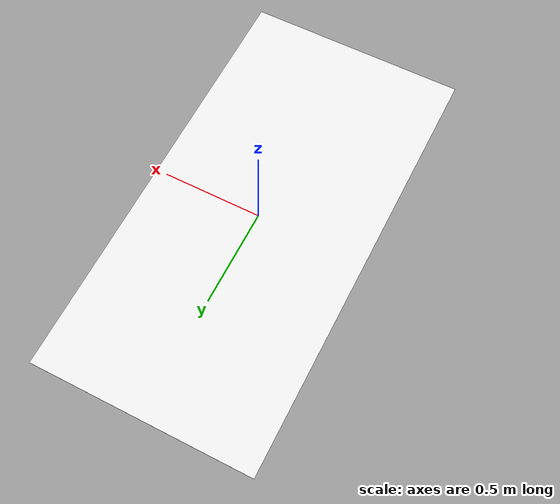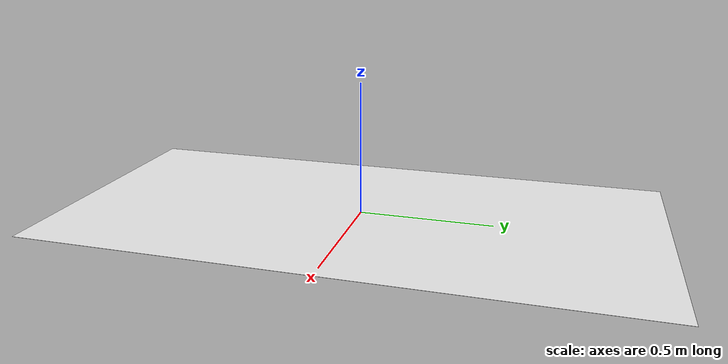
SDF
<?xml version='1.0'?>
<sdf version='1.6'>
  <model name='race_track14'>
    <static>true</static>
    <link name='link'>
      <visual name='visual'>
        <geometry>
          <box>
            <size>1.112 2.231 0.000553</size>
          </box>
        </geometry>
        <material>
          <script>
            <name>RaceTrack14/track14</name>
	    <uri>model://racetrack14/materials/scripts</uri>
            <uri>model://racetrack14/materials/textures</uri>
          </script>
          <ambient>1 1 1 1</ambient>
          <diffuse>1 1 1 1</diffuse>
          <specular>0.01 0.01 0.01 1</specular>
          <emissive>1 1 1 1</emissive>
        </material>
        <transparency>0</transparency>
      </visual>
      <collision name='collision'>
        <geometry>
          <box>
            <size>1.112 2.231 0.000553</size>
          </box>
        </geometry>
	<surface>
          <friction>
            <ode>
              <mu>100</mu>
              <mu2>50</mu2>
            </ode>
          </friction>
        </surface>
      </collision>
    </link>
  </model>
</sdf>
